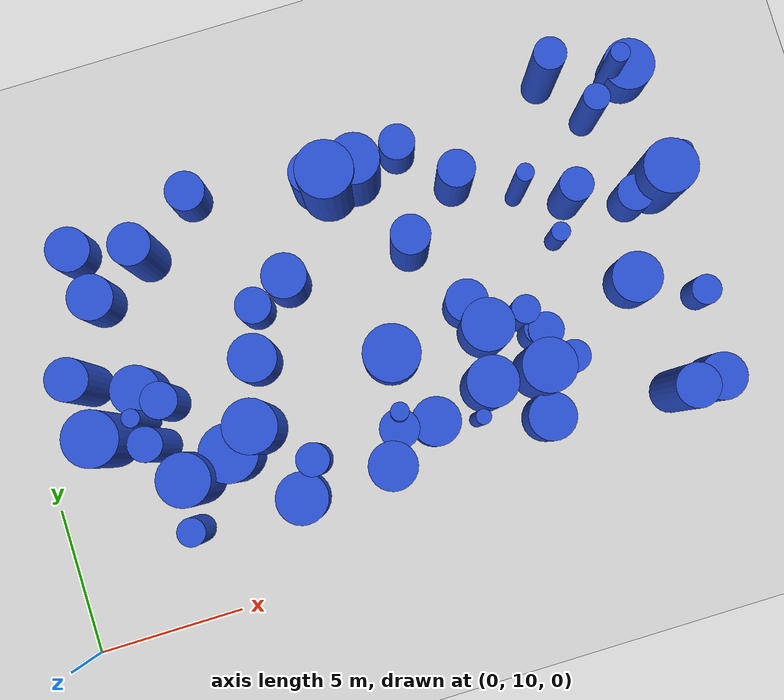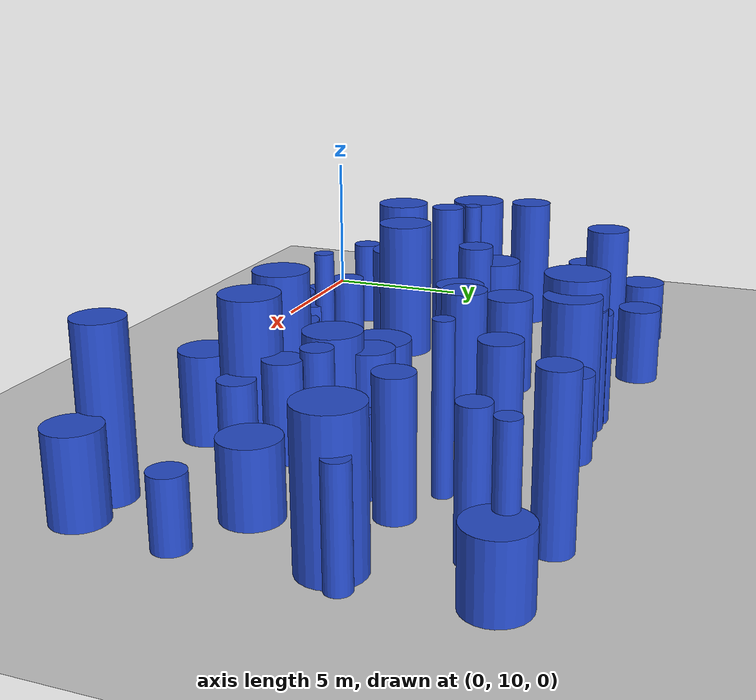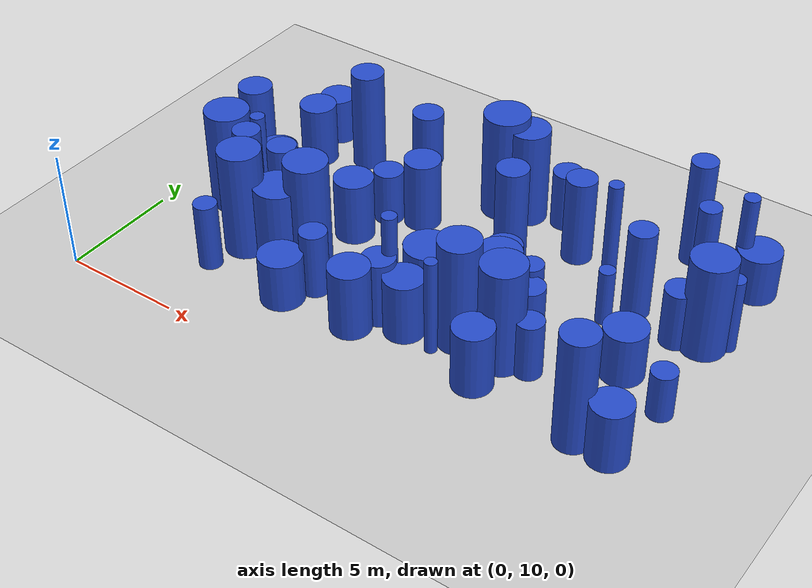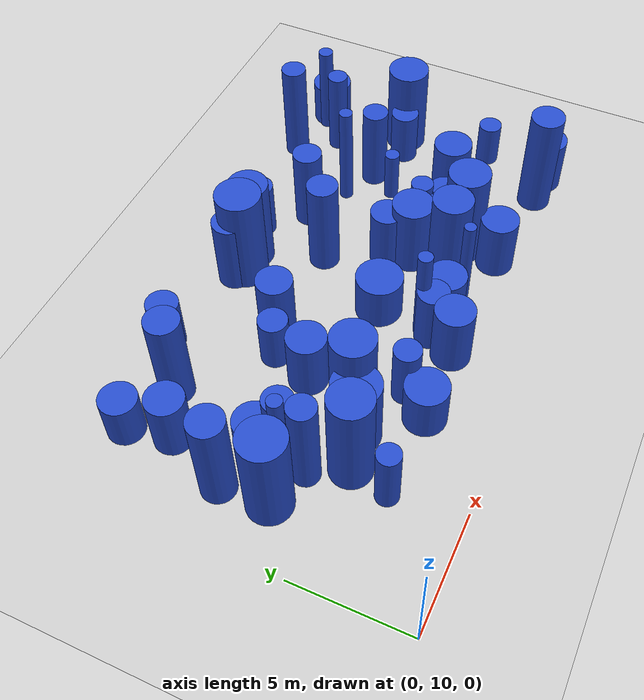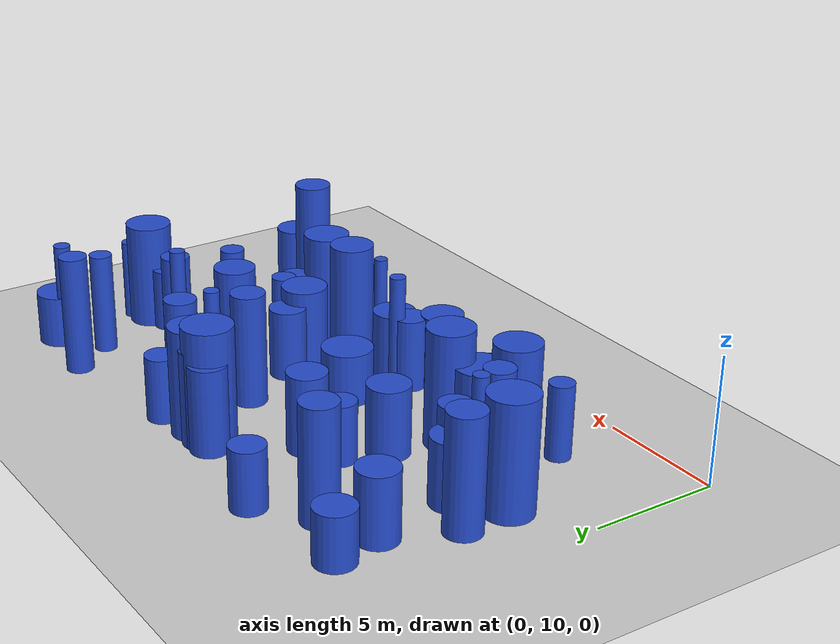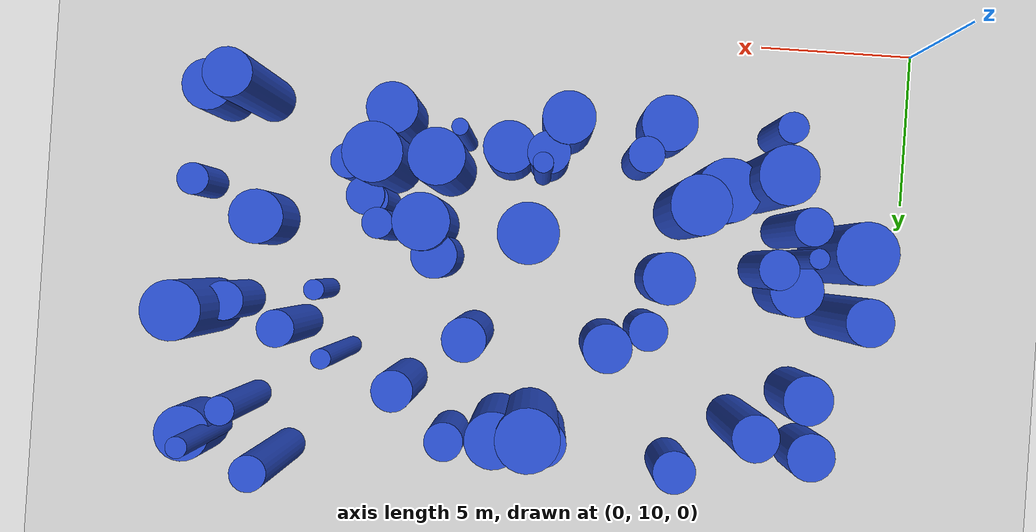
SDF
<sdf version="1.6">
 <world name="default">
  <model name="ground_plane">
   <static>1</static>
   <link name="link">
    <collision name="collision">
     <geometry><plane><normal>0 0 1</normal><size>100 100</size></plane></geometry>
     <surface><friction><ode><mu>100</mu><mu2>50</mu2></ode></friction></surface>
    </collision>
    <visual name="visual">
     <cast_shadows>0</cast_shadows>
     <geometry><plane><normal>0 0 1</normal><size>100 100</size></plane></geometry>
     <material>
      <script><uri>file://media/materials/scripts/gazebo.material</uri><name>Gazebo/Grey</name></script>
     </material>
    </visual>
   </link>
  </model>
  <model name="0">
   <static>0</static>
   <link name="link">
    <inertial>
     <mass>2</mass>
     <inertia><ixx>2.34982</ixx><ixy>0</ixy><ixz>0</ixz><iyy>2.34982</iyy><iyz>0</iyz><izz>0.175341</izz></inertia>
    </inertial>
    <collision name="collision">
     <geometry><cylinder><length>3.68414</length><radius>0.418737</radius></cylinder></geometry>
     <surface><contact><collide_without_contact>1</collide_without_contact></contact></surface>
    </collision>
    <visual name="visual">
     <geometry><cylinder><length>3.68414</length><radius>0.418737</radius></cylinder></geometry>
     <material>
      <script><uri>file://media/materials/scripts/gazebo.material</uri><name>Gazebo/Blue</name></script>
     </material>
    </visual>
    <gravity>0</gravity>
   </link>
   <pose>22.4212 20.0822 1.84207 0 -0 0</pose>
  </model>
  <model name="9">
   <static>0</static>
   <link name="link">
    <inertial>
     <mass>2</mass>
     <inertia><ixx>1.77191</ixx><ixy>0</ixy><ixz>0</ixz><iyy>1.77191</iyy><iyz>0</iyz><izz>0.691914</izz></inertia>
    </inertial>
    <collision name="collision">
     <geometry><cylinder><length>2.92502</length><radius>0.831814</radius></cylinder></geometry>
     <surface><contact><collide_without_contact>1</collide_without_contact></contact></surface>
    </collision>
    <visual name="visual">
     <geometry><cylinder><length>2.92502</length><radius>0.831814</radius></cylinder></geometry>
     <material>
      <script><uri>file://media/materials/scripts/gazebo.material</uri><name>Gazebo/Blue</name></script>
     </material>
    </visual>
    <gravity>0</gravity>
   </link>
   <pose>11.3721 13.2 1.46251 0 -0 0</pose>
  </model>
  <model name="12">
   <static>0</static>
   <link name="link">
    <inertial>
     <mass>2</mass>
     <inertia>
      <ixx>3.57056</ixx>
      <ixy>0</ixy>
      <ixz>0</ixz>
      <iyy>3.57056</iyy>
      <iyz>0</iyz>
      <izz>0.0913782</izz>
     </inertia>
    </inertial>
    <collision name="collision">
     <geometry><cylinder><length>4.59883</length><radius>0.302288</radius></cylinder></geometry>
     <surface><contact><collide_without_contact>1</collide_without_contact></contact></surface>
    </collision>
    <visual name="visual">
     <geometry><cylinder><length>4.59883</length><radius>0.302288</radius></cylinder></geometry>
     <material>
      <script><uri>file://media/materials/scripts/gazebo.material</uri><name>Gazebo/Blue</name></script>
     </material>
    </visual>
    <gravity>0</gravity>
   </link>
   <pose>3.87306 17.0696 2.29941 0 -0 0</pose>
  </model>
  <model name="15">
   <static>0</static>
   <link name="link">
    <inertial>
     <mass>2</mass>
     <inertia><ixx>1.15166</ixx><ixy>0</ixy><ixz>0</ixz><iyy>1.15166</iyy><iyz>0</iyz><izz>0.803615</izz></inertia>
    </inertial>
    <collision name="collision">
     <geometry><cylinder><length>2.12111</length><radius>0.896446</radius></cylinder></geometry>
     <surface><contact><collide_without_contact>1</collide_without_contact></contact></surface>
    </collision>
    <visual name="visual">
     <geometry><cylinder><length>2.12111</length><radius>0.896446</radius></cylinder></geometry>
     <material>
      <script><uri>file://media/materials/scripts/gazebo.material</uri><name>Gazebo/Blue</name></script>
     </material>
    </visual>
    <gravity>0</gravity>
   </link>
   <pose>8.16995 13.0512 1.06056 0 -0 0</pose>
  </model>
  <model name="40">
   <static>0</static>
   <link name="link">
    <inertial>
     <mass>2</mass>
     <inertia><ixx>1.56214</ixx><ixy>0</ixy><ixz>0</ixz><iyy>1.56214</iyy><iyz>0</iyz><izz>0.523114</izz></inertia>
    </inertial>
    <collision name="collision">
     <geometry><cylinder><length>2.79347</length><radius>0.723266</radius></cylinder></geometry>
     <surface><contact><collide_without_contact>1</collide_without_contact></contact></surface>
    </collision>
    <visual name="visual">
     <geometry><cylinder><length>2.79347</length><radius>0.723266</radius></cylinder></geometry>
     <material>
      <script><uri>file://media/materials/scripts/gazebo.material</uri><name>Gazebo/Blue</name></script>
     </material>
    </visual>
    <gravity>0</gravity>
   </link>
   <pose>15.2742 17.7058 1.39674 0 -0 0</pose>
  </model>
  <model name="42">
   <static>0</static>
   <link name="link">
    <inertial>
     <mass>2</mass>
     <inertia><ixx>3.9345</ixx><ixy>0</ixy><ixz>0</ixz><iyy>3.9345</iyy><iyz>0</iyz><izz>0.817818</izz></inertia>
    </inertial>
    <collision name="collision">
     <geometry><cylinder><length>4.5993</length><radius>0.904333</radius></cylinder></geometry>
     <surface><contact><collide_without_contact>1</collide_without_contact></contact></surface>
    </collision>
    <visual name="visual">
     <geometry><cylinder><length>4.5993</length><radius>0.904333</radius></cylinder></geometry>
     <material>
      <script><uri>file://media/materials/scripts/gazebo.material</uri><name>Gazebo/Blue</name></script>
     </material>
    </visual>
    <gravity>0</gravity>
   </link>
   <pose>7.3963 15.7324 2.29965 0 -0 0</pose>
  </model>
  <model name="49">
   <static>0</static>
   <link name="link">
    <inertial>
     <mass>2</mass>
     <inertia><ixx>1.51586</ixx><ixy>0</ixy><ixz>0</ixz><iyy>1.51586</iyy><iyz>0</iyz><izz>0.321451</izz></inertia>
    </inertial>
    <collision name="collision">
     <geometry><cylinder><length>2.85146</length><radius>0.566967</radius></cylinder></geometry>
     <surface><contact><collide_without_contact>1</collide_without_contact></contact></surface>
    </collision>
    <visual name="visual">
     <geometry><cylinder><length>2.85146</length><radius>0.566967</radius></cylinder></geometry>
     <material>
      <script><uri>file://media/materials/scripts/gazebo.material</uri><name>Gazebo/Blue</name></script>
     </material>
    </visual>
    <gravity>0</gravity>
   </link>
   <pose>8.91157 14.1693 1.42573 0 -0 0</pose>
  </model>
  <model name="50">
   <static>0</static>
   <link name="link">
    <inertial>
     <mass>2</mass>
     <inertia><ixx>1.61339</ixx><ixy>0</ixy><ixz>0</ixz><iyy>1.61339</iyy><iyz>0</iyz><izz>0.452002</izz></inertia>
    </inertial>
    <collision name="collision">
     <geometry><cylinder><length>2.8852</length><radius>0.672311</radius></cylinder></geometry>
     <surface><contact><collide_without_contact>1</collide_without_contact></contact></surface>
    </collision>
    <visual name="visual">
     <geometry><cylinder><length>2.8852</length><radius>0.672311</radius></cylinder></geometry>
     <material>
      <script><uri>file://media/materials/scripts/gazebo.material</uri><name>Gazebo/Blue</name></script>
     </material>
    </visual>
    <gravity>0</gravity>
   </link>
   <pose>11.9244 14.3079 1.4426 0 -0 0</pose>
  </model>
  <model name="55">
   <static>0</static>
   <link name="link">
    <inertial>
     <mass>2</mass>
     <inertia><ixx>4.19628</ixx><ixy>0</ixy><ixz>0</ixz><iyy>4.19628</iyy><iyz>0</iyz><izz>0.712394</izz></inertia>
    </inertial>
    <collision name="collision">
     <geometry><cylinder><length>4.80005</length><radius>0.844034</radius></cylinder></geometry>
     <surface><contact><collide_without_contact>1</collide_without_contact></contact></surface>
    </collision>
    <visual name="visual">
     <geometry><cylinder><length>4.80005</length><radius>0.844034</radius></cylinder></geometry>
     <material>
      <script><uri>file://media/materials/scripts/gazebo.material</uri><name>Gazebo/Blue</name></script>
     </material>
    </visual>
    <gravity>0</gravity>
   </link>
   <pose>15.1603 14.8496 2.40003 0 -0 0</pose>
  </model>
  <model name="65">
   <static>0</static>
   <link name="link">
    <inertial>
     <mass>2</mass>
     <inertia><ixx>1.82034</ixx><ixy>0</ixy><ixz>0</ixz><iyy>1.82034</iyy><iyz>0</iyz><izz>0.128433</izz></inertia>
    </inertial>
    <collision name="collision">
     <geometry><cylinder><length>3.24603</length><radius>0.358375</radius></cylinder></geometry>
     <surface><contact><collide_without_contact>1</collide_without_contact></contact></surface>
    </collision>
    <visual name="visual">
     <geometry><cylinder><length>3.24603</length><radius>0.358375</radius></cylinder></geometry>
     <material>
      <script><uri>file://media/materials/scripts/gazebo.material</uri><name>Gazebo/Blue</name></script>
     </material>
    </visual>
    <gravity>0</gravity>
   </link>
   <pose>23.5079 20.3422 1.62302 0 -0 0</pose>
  </model>
  <model name="69">
   <static>0</static>
   <link name="link">
    <inertial>
     <mass>2</mass>
     <inertia><ixx>3.87499</ixx><ixy>0</ixy><ixz>0</ixz><iyy>3.87499</iyy><iyz>0</iyz><izz>0.295667</izz></inertia>
    </inertial>
    <collision name="collision">
     <geometry><cylinder><length>4.72895</length><radius>0.543753</radius></cylinder></geometry>
     <surface><contact><collide_without_contact>1</collide_without_contact></contact></surface>
    </collision>
    <visual name="visual">
     <geometry><cylinder><length>4.72895</length><radius>0.543753</radius></cylinder></geometry>
     <material>
      <script><uri>file://media/materials/scripts/gazebo.material</uri><name>Gazebo/Blue</name></script>
     </material>
    </visual>
    <gravity>0</gravity>
   </link>
   <pose>20.0239 24.3758 2.36447 0 -0 0</pose>
  </model>
  <model name="78">
   <static>0</static>
   <link name="link">
    <inertial>
     <mass>2</mass>
     <inertia><ixx>1.49884</ixx><ixy>0</ixy><ixz>0</ixz><iyy>1.49884</iyy><iyz>0</iyz><izz>0.718499</izz></inertia>
    </inertial>
    <collision name="collision">
     <geometry><cylinder><length>2.61487</length><radius>0.847643</radius></cylinder></geometry>
     <surface><contact><collide_without_contact>1</collide_without_contact></contact></surface>
    </collision>
    <visual name="visual">
     <geometry><cylinder><length>2.61487</length><radius>0.847643</radius></cylinder></geometry>
     <material>
      <script><uri>file://media/materials/scripts/gazebo.material</uri><name>Gazebo/Blue</name></script>
     </material>
    </visual>
    <gravity>0</gravity>
   </link>
   <pose>3.94613 18.0538 1.30744 0 -0 0</pose>
  </model>
  <model name="93">
   <static>0</static>
   <link name="link">
    <inertial>
     <mass>2</mass>
     <inertia><ixx>3.51306</ixx><ixy>0</ixy><ixz>0</ixz><iyy>3.51306</iyy><iyz>0</iyz><izz>0.438819</izz></inertia>
    </inertial>
    <collision name="collision">
     <geometry><cylinder><length>4.44544</length><radius>0.662434</radius></cylinder></geometry>
     <surface><contact><collide_without_contact>1</collide_without_contact></contact></surface>
    </collision>
    <visual name="visual">
     <geometry><cylinder><length>4.44544</length><radius>0.662434</radius></cylinder></geometry>
     <material>
      <script><uri>file://media/materials/scripts/gazebo.material</uri><name>Gazebo/Blue</name></script>
     </material>
    </visual>
    <gravity>0</gravity>
   </link>
   <pose>14.0495 20.1173 2.22272 0 -0 0</pose>
  </model>
  <model name="95">
   <static>0</static>
   <link name="link">
    <inertial>
     <mass>2</mass>
     <inertia><ixx>2.62375</ixx><ixy>0</ixy><ixz>0</ixz><iyy>2.62375</iyy><iyz>0</iyz><izz>0.398352</izz></inertia>
    </inertial>
    <collision name="collision">
     <geometry><cylinder><length>3.81411</length><radius>0.631151</radius></cylinder></geometry>
     <surface><contact><collide_without_contact>1</collide_without_contact></contact></surface>
    </collision>
    <visual name="visual">
     <geometry><cylinder><length>3.81411</length><radius>0.631151</radius></cylinder></geometry>
     <material>
      <script><uri>file://media/materials/scripts/gazebo.material</uri><name>Gazebo/Blue</name></script>
     </material>
    </visual>
    <gravity>0</gravity>
   </link>
   <pose>16.1446 21.8435 1.90705 0 -0 0</pose>
  </model>
  <model name="98">
   <static>0</static>
   <link name="link">
    <inertial>
     <mass>2</mass>
     <inertia><ixx>1.56863</ixx><ixy>0</ixy><ixz>0</ixz><iyy>1.56863</iyy><iyz>0</iyz><izz>0.659448</izz></inertia>
    </inertial>
    <collision name="collision">
     <geometry><cylinder><length>2.72643</length><radius>0.812064</radius></cylinder></geometry>
     <surface><contact><collide_without_contact>1</collide_without_contact></contact></surface>
    </collision>
    <visual name="visual">
     <geometry><cylinder><length>2.72643</length><radius>0.812064</radius></cylinder></geometry>
     <material>
      <script><uri>file://media/materials/scripts/gazebo.material</uri><name>Gazebo/Blue</name></script>
     </material>
    </visual>
    <gravity>0</gravity>
   </link>
   <pose>16.8643 13.2333 1.36321 0 -0 0</pose>
  </model>
  <model name="105">
   <static>0</static>
   <link name="link">
    <inertial>
     <mass>2</mass>
     <inertia><ixx>3.61232</ixx><ixy>0</ixy><ixz>0</ixz><iyy>3.61232</iyy><iyz>0</iyz><izz>0.498938</izz></inertia>
    </inertial>
    <collision name="collision">
     <geometry><cylinder><length>4.49189</length><radius>0.706356</radius></cylinder></geometry>
     <surface><contact><collide_without_contact>1</collide_without_contact></contact></surface>
    </collision>
    <visual name="visual">
     <geometry><cylinder><length>4.49189</length><radius>0.706356</radius></cylinder></geometry>
     <material>
      <script><uri>file://media/materials/scripts/gazebo.material</uri><name>Gazebo/Blue</name></script>
     </material>
    </visual>
    <gravity>0</gravity>
   </link>
   <pose>5.34761 22.4274 2.24595 0 -0 0</pose>
  </model>
  <model name="106">
   <static>0</static>
   <link name="link">
    <inertial>
     <mass>2</mass>
     <inertia><ixx>1.86812</ixx><ixy>0</ixy><ixz>0</ixz><iyy>1.86812</iyy><iyz>0</iyz><izz>0.587072</izz></inertia>
    </inertial>
    <collision name="collision">
     <geometry><cylinder><length>3.07368</length><radius>0.766206</radius></cylinder></geometry>
     <surface><contact><collide_without_contact>1</collide_without_contact></contact></surface>
    </collision>
    <visual name="visual">
     <geometry><cylinder><length>3.07368</length><radius>0.766206</radius></cylinder></geometry>
     <material>
      <script><uri>file://media/materials/scripts/gazebo.material</uri><name>Gazebo/Blue</name></script>
     </material>
    </visual>
    <gravity>0</gravity>
   </link>
   <pose>9.74168 20.2119 1.53684 0 -0 0</pose>
  </model>
  <model name="145">
   <static>0</static>
   <link name="link">
    <inertial>
     <mass>2</mass>
     <inertia><ixx>3.38474</ixx><ixy>0</ixy><ixz>0</ixz><iyy>3.38474</iyy><iyz>0</iyz><izz>0.826733</izz></inertia>
    </inertial>
    <collision name="collision">
     <geometry><cylinder><length>4.22235</length><radius>0.909248</radius></cylinder></geometry>
     <surface><contact><collide_without_contact>1</collide_without_contact></contact></surface>
    </collision>
    <visual name="visual">
     <geometry><cylinder><length>4.22235</length><radius>0.909248</radius></cylinder></geometry>
     <material>
      <script><uri>file://media/materials/scripts/gazebo.material</uri><name>Gazebo/Blue</name></script>
     </material>
    </visual>
    <gravity>0</gravity>
   </link>
   <pose>22.763 19.844 2.11117 0 -0 0</pose>
  </model>
  <model name="147">
   <static>0</static>
   <link name="link">
    <inertial>
     <mass>2</mass>
     <inertia><ixx>2.23956</ixx><ixy>0</ixy><ixz>0</ixz><iyy>2.23956</iyy><iyz>0</iyz><izz>0.798507</izz></inertia>
    </inertial>
    <collision name="collision">
     <geometry><cylinder><length>3.32292</length><radius>0.893592</radius></cylinder></geometry>
     <surface><contact><collide_without_contact>1</collide_without_contact></contact></surface>
    </collision>
    <visual name="visual">
     <geometry><cylinder><length>3.32292</length><radius>0.893592</radius></cylinder></geometry>
     <material>
      <script><uri>file://media/materials/scripts/gazebo.material</uri><name>Gazebo/Blue</name></script>
     </material>
    </visual>
    <gravity>0</gravity>
   </link>
   <pose>15.6747 16.7073 1.66146 0 -0 0</pose>
  </model>
  <model name="156">
   <static>0</static>
   <link name="link">
    <inertial>
     <mass>2</mass>
     <inertia><ixx>1.19211</ixx><ixy>0</ixy><ixz>0</ixz><iyy>1.19211</iyy><iyz>0</iyz><izz>0.749006</izz></inertia>
    </inertial>
    <collision name="collision">
     <geometry><cylinder><length>2.21487</length><radius>0.865451</radius></cylinder></geometry>
     <surface><contact><collide_without_contact>1</collide_without_contact></contact></surface>
    </collision>
    <visual name="visual">
     <geometry><cylinder><length>2.21487</length><radius>0.865451</radius></cylinder></geometry>
     <material>
      <script><uri>file://media/materials/scripts/gazebo.material</uri><name>Gazebo/Blue</name></script>
     </material>
    </visual>
    <gravity>0</gravity>
   </link>
   <pose>21.0144 16.8537 1.10743 0 -0 0</pose>
  </model>
  <model name="167">
   <static>0</static>
   <link name="link">
    <inertial>
     <mass>2</mass>
     <inertia>
      <ixx>3.98124</ixx>
      <ixy>0</ixy>
      <ixz>0</ixz>
      <iyy>3.98124</iyy>
      <iyz>0</iyz>
      <izz>0.0870769</izz>
     </inertia>
    </inertial>
    <collision name="collision">
     <geometry><cylinder><length>4.86068</length><radius>0.295088</radius></cylinder></geometry>
     <surface><contact><collide_without_contact>1</collide_without_contact></contact></surface>
    </collision>
    <visual name="visual">
     <geometry><cylinder><length>4.86068</length><radius>0.295088</radius></cylinder></geometry>
     <material>
      <script><uri>file://media/materials/scripts/gazebo.material</uri><name>Gazebo/Blue</name></script>
     </material>
    </visual>
    <gravity>0</gravity>
   </link>
   <pose>18.097 20.9042 2.43034 0 -0 0</pose>
  </model>
  <model name="172">
   <static>0</static>
   <link name="link">
    <inertial>
     <mass>2</mass>
     <inertia><ixx>3.68279</ixx><ixy>0</ixy><ixz>0</ixz><iyy>3.68279</iyy><iyz>0</iyz><izz>0.512461</izz></inertia>
    </inertial>
    <collision name="collision">
     <geometry><cylinder><length>4.53424</length><radius>0.715864</radius></cylinder></geometry>
     <surface><contact><collide_without_contact>1</collide_without_contact></contact></surface>
    </collision>
    <visual name="visual">
     <geometry><cylinder><length>4.53424</length><radius>0.715864</radius></cylinder></geometry>
     <material>
      <script><uri>file://media/materials/scripts/gazebo.material</uri><name>Gazebo/Blue</name></script>
     </material>
    </visual>
    <gravity>0</gravity>
   </link>
   <pose>2.25294 18.8386 2.26712 0 -0 0</pose>
  </model>
  <model name="197">
   <static>0</static>
   <link name="link">
    <inertial>
     <mass>2</mass>
     <inertia>
      <ixx>2.94893</ixx>
      <ixy>0</ixy>
      <ixz>0</ixz>
      <iyy>2.94893</iyy>
      <iyz>0</iyz>
      <izz>0.0649626</izz>
     </inertia>
    </inertial>
    <collision name="collision">
     <geometry><cylinder><length>4.18315</length><radius>0.254878</radius></cylinder></geometry>
     <surface><contact><collide_without_contact>1</collide_without_contact></contact></surface>
    </collision>
    <visual name="visual">
     <geometry><cylinder><length>4.18315</length><radius>0.254878</radius></cylinder></geometry>
     <material>
      <script><uri>file://media/materials/scripts/gazebo.material</uri><name>Gazebo/Blue</name></script>
     </material>
    </visual>
    <gravity>0</gravity>
   </link>
   <pose>14.5908 13.8722 2.09157 0 -0 0</pose>
  </model>
  <model name="206">
   <static>0</static>
   <link name="link">
    <inertial>
     <mass>2</mass>
     <inertia><ixx>1.4202</ixx><ixy>0</ixy><ixz>0</ixz><iyy>1.4202</iyy><iyz>0</iyz><izz>0.643957</izz></inertia>
    </inertial>
    <collision name="collision">
     <geometry><cylinder><length>2.56697</length><radius>0.802469</radius></cylinder></geometry>
     <surface><contact><collide_without_contact>1</collide_without_contact></contact></surface>
    </collision>
    <visual name="visual">
     <geometry><cylinder><length>2.56697</length><radius>0.802469</radius></cylinder></geometry>
     <material>
      <script><uri>file://media/materials/scripts/gazebo.material</uri><name>Gazebo/Blue</name></script>
     </material>
    </visual>
    <gravity>0</gravity>
   </link>
   <pose>22.6809 12.8611 1.28349 0 -0 0</pose>
  </model>
  <model name="214">
   <static>0</static>
   <link name="link">
    <inertial>
     <mass>2</mass>
     <inertia><ixx>4.10272</ixx><ixy>0</ixy><ixz>0</ixz><iyy>4.10272</iyy><iyz>0</iyz><izz>0.934461</izz></inertia>
    </inertial>
    <collision name="collision">
     <geometry><cylinder><length>4.67043</length><radius>0.966675</radius></cylinder></geometry>
     <surface><contact><collide_without_contact>1</collide_without_contact></contact></surface>
    </collision>
    <visual name="visual">
     <geometry><cylinder><length>4.67043</length><radius>0.966675</radius></cylinder></geometry>
     <material>
      <script><uri>file://media/materials/scripts/gazebo.material</uri><name>Gazebo/Blue</name></script>
     </material>
    </visual>
    <gravity>0</gravity>
   </link>
   <pose>11.9987 22.9 2.33522 0 -0 0</pose>
  </model>
  <model name="239">
   <static>0</static>
   <link name="link">
    <inertial>
     <mass>2</mass>
     <inertia><ixx>3.57144</ixx><ixy>0</ixy><ixz>0</ixz><iyy>3.57144</iyy><iyz>0</iyz><izz>0.331608</izz></inertia>
    </inertial>
    <collision name="collision">
     <geometry><cylinder><length>4.52038</length><radius>0.575854</radius></cylinder></geometry>
     <surface><contact><collide_without_contact>1</collide_without_contact></contact></surface>
    </collision>
    <visual name="visual">
     <geometry><cylinder><length>4.52038</length><radius>0.575854</radius></cylinder></geometry>
     <material>
      <script><uri>file://media/materials/scripts/gazebo.material</uri><name>Gazebo/Blue</name></script>
     </material>
    </visual>
    <gravity>0</gravity>
   </link>
   <pose>4.06341 16.1518 2.26019 0 -0 0</pose>
  </model>
  <model name="279">
   <static>0</static>
   <link name="link">
    <inertial>
     <mass>2</mass>
     <inertia>
      <ixx>0.821033</ixx>
      <ixy>0</ixy>
      <ixz>0</ixz>
      <iyy>0.821033</iyy>
      <iyz>0</iyz>
      <izz>0.260444</izz>
     </inertia>
    </inertial>
    <collision name="collision">
     <geometry><cylinder><length>2.03589</length><radius>0.510337</radius></cylinder></geometry>
     <surface><contact><collide_without_contact>1</collide_without_contact></contact></surface>
    </collision>
    <visual name="visual">
     <geometry><cylinder><length>2.03589</length><radius>0.510337</radius></cylinder></geometry>
     <material>
      <script><uri>file://media/materials/scripts/gazebo.material</uri><name>Gazebo/Blue</name></script>
     </material>
    </visual>
    <gravity>0</gravity>
   </link>
   <pose>23.1385 15.789 1.01795 0 -0 0</pose>
  </model>
  <model name="282">
   <static>0</static>
   <link name="link">
    <inertial>
     <mass>2</mass>
     <inertia><ixx>1.53958</ixx><ixy>0</ixy><ixz>0</ixz><iyy>1.53958</iyy><iyz>0</iyz><izz>0.616621</izz></inertia>
    </inertial>
    <collision name="collision">
     <geometry><cylinder><length>2.71802</length><radius>0.785252</radius></cylinder></geometry>
     <surface><contact><collide_without_contact>1</collide_without_contact></contact></surface>
    </collision>
    <visual name="visual">
     <geometry><cylinder><length>2.71802</length><radius>0.785252</radius></cylinder></geometry>
     <material>
      <script><uri>file://media/materials/scripts/gazebo.material</uri><name>Gazebo/Blue</name></script>
     </material>
    </visual>
    <gravity>0</gravity>
   </link>
   <pose>3.39095 21.4374 1.35901 0 -0 0</pose>
  </model>
  <model name="291">
   <static>0</static>
   <link name="link">
    <inertial>
     <mass>2</mass>
     <inertia><ixx>1.28958</ixx><ixy>0</ixy><ixz>0</ixz><iyy>1.28958</iyy><iyz>0</iyz><izz>0.37673</izz></inertia>
    </inertial>
    <collision name="collision">
     <geometry><cylinder><length>2.57046</length><radius>0.613783</radius></cylinder></geometry>
     <surface><contact><collide_without_contact>1</collide_without_contact></contact></surface>
    </collision>
    <visual name="visual">
     <geometry><cylinder><length>2.57046</length><radius>0.613783</radius></cylinder></geometry>
     <material>
      <script><uri>file://media/materials/scripts/gazebo.material</uri><name>Gazebo/Blue</name></script>
     </material>
    </visual>
    <gravity>0</gravity>
   </link>
   <pose>14.6183 23.4885 1.28523 0 -0 0</pose>
  </model>
  <model name="296">
   <static>0</static>
   <link name="link">
    <inertial>
     <mass>2</mass>
     <inertia><ixx>1.11084</ixx><ixy>0</ixy><ixz>0</ixz><iyy>1.11084</iyy><iyz>0</iyz><izz>0.784169</izz></inertia>
    </inertial>
    <collision name="collision">
     <geometry><cylinder><length>2.07667</length><radius>0.885533</radius></cylinder></geometry>
     <surface><contact><collide_without_contact>1</collide_without_contact></contact></surface>
    </collision>
    <visual name="visual">
     <geometry><cylinder><length>2.07667</length><radius>0.885533</radius></cylinder></geometry>
     <material>
      <script><uri>file://media/materials/scripts/gazebo.material</uri><name>Gazebo/Blue</name></script>
     </material>
    </visual>
    <gravity>0</gravity>
   </link>
   <pose>22.9486 23.8587 1.03833 0 -0 0</pose>
  </model>
  <model name="301">
   <static>0</static>
   <link name="link">
    <inertial>
     <mass>2</mass>
     <inertia><ixx>2.20664</ixx><ixy>0</ixy><ixz>0</ixz><iyy>2.20664</iyy><iyz>0</iyz><izz>0.545153</izz></inertia>
    </inertial>
    <collision name="collision">
     <geometry><cylinder><length>3.40652</length><radius>0.738345</radius></cylinder></geometry>
     <surface><contact><collide_without_contact>1</collide_without_contact></contact></surface>
    </collision>
    <visual name="visual">
     <geometry><cylinder><length>3.40652</length><radius>0.738345</radius></cylinder></geometry>
     <material>
      <script><uri>file://media/materials/scripts/gazebo.material</uri><name>Gazebo/Blue</name></script>
     </material>
    </visual>
    <gravity>0</gravity>
   </link>
   <pose>11.5515 23.1869 1.70326 0 -0 0</pose>
  </model>
  <model name="303">
   <static>0</static>
   <link name="link">
    <inertial>
     <mass>2</mass>
     <inertia><ixx>1.10804</ixx><ixy>0</ixy><ixz>0</ixz><iyy>1.10804</iyy><iyz>0</iyz><izz>0.384993</izz></inertia>
    </inertial>
    <collision name="collision">
     <geometry><cylinder><length>2.34377</length><radius>0.620478</radius></cylinder></geometry>
     <surface><contact><collide_without_contact>1</collide_without_contact></contact></surface>
    </collision>
    <visual name="visual">
     <geometry><cylinder><length>2.34377</length><radius>0.620478</radius></cylinder></geometry>
     <material>
      <script><uri>file://media/materials/scripts/gazebo.material</uri><name>Gazebo/Blue</name></script>
     </material>
    </visual>
    <gravity>0</gravity>
   </link>
   <pose>8.44668 19.6552 1.17188 0 -0 0</pose>
  </model>
  <model name="312">
   <static>0</static>
   <link name="link">
    <inertial>
     <mass>2</mass>
     <inertia><ixx>1.56041</ixx><ixy>0</ixy><ixz>0</ixz><iyy>1.56041</iyy><iyz>0</iyz><izz>0.232536</izz></inertia>
    </inertial>
    <collision name="collision">
     <geometry><cylinder><length>2.94361</length><radius>0.48222</radius></cylinder></geometry>
     <surface><contact><collide_without_contact>1</collide_without_contact></contact></surface>
    </collision>
    <visual name="visual">
     <geometry><cylinder><length>2.94361</length><radius>0.48222</radius></cylinder></geometry>
     <material>
      <script><uri>file://media/materials/scripts/gazebo.material</uri><name>Gazebo/Blue</name></script>
     </material>
    </visual>
    <gravity>0</gravity>
   </link>
   <pose>4.46694 13.0554 1.47181 0 -0 0</pose>
  </model>
  <model name="316">
   <static>0</static>
   <link name="link">
    <inertial>
     <mass>2</mass>
     <inertia><ixx>2.39269</ixx><ixy>0</ixy><ixz>0</ixz><iyy>2.39269</iyy><iyz>0</iyz><izz>0.978938</izz></inertia>
    </inertial>
    <collision name="collision">
     <geometry><cylinder><length>3.37925</length><radius>0.989413</radius></cylinder></geometry>
     <surface><contact><collide_without_contact>1</collide_without_contact></contact></surface>
    </collision>
    <visual name="visual">
     <geometry><cylinder><length>3.37925</length><radius>0.989413</radius></cylinder></geometry>
     <material>
      <script><uri>file://media/materials/scripts/gazebo.material</uri><name>Gazebo/Blue</name></script>
     </material>
    </visual>
    <gravity>0</gravity>
   </link>
   <pose>6.38619 15.1518 1.68962 0 -0 0</pose>
  </model>
  <model name="324">
   <static>0</static>
   <link name="link">
    <inertial>
     <mass>2</mass>
     <inertia><ixx>1.20902</ixx><ixy>0</ixy><ixz>0</ixz><iyy>1.20902</iyy><iyz>0</iyz><izz>0.993328</izz></inertia>
    </inertial>
    <collision name="collision">
     <geometry><cylinder><length>2.0674</length><radius>0.996658</radius></cylinder></geometry>
     <surface><contact><collide_without_contact>1</collide_without_contact></contact></surface>
    </collision>
    <visual name="visual">
     <geometry><cylinder><length>2.0674</length><radius>0.996658</radius></cylinder></geometry>
     <material>
      <script><uri>file://media/materials/scripts/gazebo.material</uri><name>Gazebo/Blue</name></script>
     </material>
    </visual>
    <gravity>0</gravity>
   </link>
   <pose>12.4123 16.8154 1.0337 0 -0 0</pose>
  </model>
  <model name="329">
   <static>0</static>
   <link name="link">
    <inertial>
     <mass>2</mass>
     <inertia><ixx>1.24222</ixx><ixy>0</ixy><ixz>0</ixz><iyy>1.24222</iyy><iyz>0</iyz><izz>0.385061</izz></inertia>
    </inertial>
    <collision name="collision">
     <geometry><cylinder><length>2.50961</length><radius>0.620533</radius></cylinder></geometry>
     <surface><contact><collide_without_contact>1</collide_without_contact></contact></surface>
    </collision>
    <visual name="visual">
     <geometry><cylinder><length>2.50961</length><radius>0.620533</radius></cylinder></geometry>
     <material>
      <script><uri>file://media/materials/scripts/gazebo.material</uri><name>Gazebo/Blue</name></script>
     </material>
    </visual>
    <gravity>0</gravity>
   </link>
   <pose>21.7572 19.5504 1.25481 0 -0 0</pose>
  </model>
  <model name="332">
   <static>0</static>
   <link name="link">
    <inertial>
     <mass>2</mass>
     <inertia><ixx>3.08615</ixx><ixy>0</ixy><ixz>0</ixz><iyy>3.08615</iyy><iyz>0</iyz><izz>0.106365</izz></inertia>
    </inertial>
    <collision name="collision">
     <geometry><cylinder><length>4.26589</length><radius>0.326137</radius></cylinder></geometry>
     <surface><contact><collide_without_contact>1</collide_without_contact></contact></surface>
    </collision>
    <visual name="visual">
     <geometry><cylinder><length>4.26589</length><radius>0.326137</radius></cylinder></geometry>
     <material>
      <script><uri>file://media/materials/scripts/gazebo.material</uri><name>Gazebo/Blue</name></script>
     </material>
    </visual>
    <gravity>0</gravity>
   </link>
   <pose>22.2987 23.8525 2.13294 0 -0 0</pose>
  </model>
  <model name="338">
   <static>0</static>
   <link name="link">
    <inertial>
     <mass>2</mass>
     <inertia><ixx>1.03598</ixx><ixy>0</ixy><ixz>0</ixz><iyy>1.03598</iyy><iyz>0</iyz><izz>0.105021</izz></inertia>
    </inertial>
    <collision name="collision">
     <geometry><cylinder><length>2.42916</length><radius>0.32407</radius></cylinder></geometry>
     <surface><contact><collide_without_contact>1</collide_without_contact></contact></surface>
    </collision>
    <visual name="visual">
     <geometry><cylinder><length>2.42916</length><radius>0.32407</radius></cylinder></geometry>
     <material>
      <script><uri>file://media/materials/scripts/gazebo.material</uri><name>Gazebo/Blue</name></script>
     </material>
    </visual>
    <gravity>0</gravity>
   </link>
   <pose>18.987 19.0302 1.21458 0 -0 0</pose>
  </model>
  <model name="348">
   <static>0</static>
   <link name="link">
    <inertial>
     <mass>2</mass>
     <inertia><ixx>3.94161</ixx><ixy>0</ixy><ixz>0</ixz><iyy>3.94161</iyy><iyz>0</iyz><izz>0.802784</izz></inertia>
    </inertial>
    <collision name="collision">
     <geometry><cylinder><length>4.60883</length><radius>0.895982</radius></cylinder></geometry>
     <surface><contact><collide_without_contact>1</collide_without_contact></contact></surface>
    </collision>
    <visual name="visual">
     <geometry><cylinder><length>4.60883</length><radius>0.895982</radius></cylinder></geometry>
     <material>
      <script><uri>file://media/materials/scripts/gazebo.material</uri><name>Gazebo/Blue</name></script>
     </material>
    </visual>
    <gravity>0</gravity>
   </link>
   <pose>17.0551 14.8237 2.30441 0 -0 0</pose>
  </model>
  <model name="349">
   <static>0</static>
   <link name="link">
    <inertial>
     <mass>2</mass>
     <inertia><ixx>4.13949</ixx><ixy>0</ixy><ixz>0</ixz><iyy>4.13949</iyy><iyz>0</iyz><izz>0.785208</izz></inertia>
    </inertial>
    <collision name="collision">
     <geometry><cylinder><length>4.74145</length><radius>0.88612</radius></cylinder></geometry>
     <surface><contact><collide_without_contact>1</collide_without_contact></contact></surface>
    </collision>
    <visual name="visual">
     <geometry><cylinder><length>4.74145</length><radius>0.88612</radius></cylinder></geometry>
     <material>
      <script><uri>file://media/materials/scripts/gazebo.material</uri><name>Gazebo/Blue</name></script>
     </material>
    </visual>
    <gravity>0</gravity>
   </link>
   <pose>4.93355 14.712 2.37072 0 -0 0</pose>
  </model>
  <model name="374">
   <static>0</static>
   <link name="link">
    <inertial>
     <mass>2</mass>
     <inertia><ixx>2.00949</ixx><ixy>0</ixy><ixz>0</ixz><iyy>2.00949</iyy><iyz>0</iyz><izz>0.389696</izz></inertia>
    </inertial>
    <collision name="collision">
     <geometry><cylinder><length>3.29968</length><radius>0.624256</radius></cylinder></geometry>
     <surface><contact><collide_without_contact>1</collide_without_contact></contact></surface>
    </collision>
    <visual name="visual">
     <geometry><cylinder><length>3.29968</length><radius>0.624256</radius></cylinder></geometry>
     <material>
      <script><uri>file://media/materials/scripts/gazebo.material</uri><name>Gazebo/Blue</name></script>
     </material>
    </visual>
    <gravity>0</gravity>
   </link>
   <pose>4.69948 17.4582 1.64984 0 -0 0</pose>
  </model>
  <model name="381">
   <static>0</static>
   <link name="link">
    <inertial>
     <mass>2</mass>
     <inertia><ixx>4.36412</ixx><ixy>0</ixy><ixz>0</ixz><iyy>4.36412</iyy><iyz>0</iyz><izz>0.53238</izz></inertia>
    </inertial>
    <collision name="collision">
     <geometry><cylinder><length>4.95858</length><radius>0.729644</radius></cylinder></geometry>
     <surface><contact><collide_without_contact>1</collide_without_contact></contact></surface>
    </collision>
    <visual name="visual">
     <geometry><cylinder><length>4.95858</length><radius>0.729644</radius></cylinder></geometry>
     <material>
      <script><uri>file://media/materials/scripts/gazebo.material</uri><name>Gazebo/Blue</name></script>
     </material>
    </visual>
    <gravity>0</gravity>
   </link>
   <pose>21.2933 12.8514 2.47929 0 -0 0</pose>
  </model>
  <model name="382">
   <static>0</static>
   <link name="link">
    <inertial>
     <mass>2</mass>
     <inertia><ixx>1.20302</ixx><ixy>0</ixy><ixz>0</ixz><iyy>1.20302</iyy><iyz>0</iyz><izz>0.460988</izz></inertia>
    </inertial>
    <collision name="collision">
     <geometry><cylinder><length>2.4156</length><radius>0.678961</radius></cylinder></geometry>
     <surface><contact><collide_without_contact>1</collide_without_contact></contact></surface>
    </collision>
    <visual name="visual">
     <geometry><cylinder><length>2.4156</length><radius>0.678961</radius></cylinder></geometry>
     <material>
      <script><uri>file://media/materials/scripts/gazebo.material</uri><name>Gazebo/Blue</name></script>
     </material>
    </visual>
    <gravity>0</gravity>
   </link>
   <pose>7.35432 23.9928 1.2078 0 -0 0</pose>
  </model>
  <model name="385">
   <static>0</static>
   <link name="link">
    <inertial>
     <mass>2</mass>
     <inertia><ixx>1.48205</ixx><ixy>0</ixy><ixz>0</ixz><iyy>1.48205</iyy><iyz>0</iyz><izz>0.686506</izz></inertia>
    </inertial>
    <collision name="collision">
     <geometry><cylinder><length>2.61396</length><radius>0.828557</radius></cylinder></geometry>
     <surface><contact><collide_without_contact>1</collide_without_contact></contact></surface>
    </collision>
    <visual name="visual">
     <geometry><cylinder><length>2.61396</length><radius>0.828557</radius></cylinder></geometry>
     <material>
      <script><uri>file://media/materials/scripts/gazebo.material</uri><name>Gazebo/Blue</name></script>
     </material>
    </visual>
    <gravity>0</gravity>
   </link>
   <pose>13.1599 14.1897 1.30698 0 -0 0</pose>
  </model>
  <model name="390">
   <static>0</static>
   <link name="link">
    <inertial>
     <mass>2</mass>
     <inertia><ixx>2.79871</ixx><ixy>0</ixy><ixz>0</ixz><iyy>2.79871</iyy><iyz>0</iyz><izz>0.198458</izz></inertia>
    </inertial>
    <collision name="collision">
     <geometry><cylinder><length>4.02454</length><radius>0.445486</radius></cylinder></geometry>
     <surface><contact><collide_without_contact>1</collide_without_contact></contact></surface>
    </collision>
    <visual name="visual">
     <geometry><cylinder><length>4.02454</length><radius>0.445486</radius></cylinder></geometry>
     <material>
      <script><uri>file://media/materials/scripts/gazebo.material</uri><name>Gazebo/Blue</name></script>
     </material>
    </visual>
    <gravity>0</gravity>
   </link>
   <pose>21.1771 22.7286 2.01227 0 -0 0</pose>
  </model>
  <model name="396">
   <static>0</static>
   <link name="link">
    <inertial>
     <mass>2</mass>
     <inertia><ixx>1.1677</ixx><ixy>0</ixy><ixz>0</ixz><iyy>1.1677</iyy><iyz>0</iyz><izz>0.305326</izz></inertia>
    </inertial>
    <collision name="collision">
     <geometry><cylinder><length>2.46784</length><radius>0.552563</radius></cylinder></geometry>
     <surface><contact><collide_without_contact>1</collide_without_contact></contact></surface>
    </collision>
    <visual name="visual">
     <geometry><cylinder><length>2.46784</length><radius>0.552563</radius></cylinder></geometry>
     <material>
      <script><uri>file://media/materials/scripts/gazebo.material</uri><name>Gazebo/Blue</name></script>
     </material>
    </visual>
    <gravity>0</gravity>
   </link>
   <pose>18.1752 14.9324 1.23392 0 -0 0</pose>
  </model>
  <model name="408">
   <static>0</static>
   <link name="link">
    <inertial>
     <mass>2</mass>
     <inertia><ixx>2.64122</ixx><ixy>0</ixy><ixz>0</ixz><iyy>2.64122</iyy><iyz>0</iyz><izz>0.733481</izz></inertia>
    </inertial>
    <collision name="collision">
     <geometry><cylinder><length>3.69417</length><radius>0.856435</radius></cylinder></geometry>
     <surface><contact><collide_without_contact>1</collide_without_contact></contact></surface>
    </collision>
    <visual name="visual">
     <geometry><cylinder><length>3.69417</length><radius>0.856435</radius></cylinder></geometry>
     <material>
      <script><uri>file://media/materials/scripts/gazebo.material</uri><name>Gazebo/Blue</name></script>
     </material>
    </visual>
    <gravity>0</gravity>
   </link>
   <pose>12.1793 23.0338 1.84708 0 -0 0</pose>
  </model>
  <model name="425">
   <static>0</static>
   <link name="link">
    <inertial>
     <mass>2</mass>
     <inertia><ixx>1.60202</ixx><ixy>0</ixy><ixz>0</ixz><iyy>1.60202</iyy><iyz>0</iyz><izz>0.677043</izz></inertia>
    </inertial>
    <collision name="collision">
     <geometry><cylinder><length>2.75336</length><radius>0.822826</radius></cylinder></geometry>
     <surface><contact><collide_without_contact>1</collide_without_contact></contact></surface>
    </collision>
    <visual name="visual">
     <geometry><cylinder><length>2.75336</length><radius>0.822826</radius></cylinder></geometry>
     <material>
      <script><uri>file://media/materials/scripts/gazebo.material</uri><name>Gazebo/Blue</name></script>
     </material>
    </visual>
    <gravity>0</gravity>
   </link>
   <pose>7.95855 17.9477 1.37668 0 -0 0</pose>
  </model>
  <model name="449">
   <static>0</static>
   <link name="link">
    <inertial>
     <mass>2</mass>
     <inertia><ixx>1.01549</ixx><ixy>0</ixy><ixz>0</ixz><iyy>1.01549</iyy><iyz>0</iyz><izz>0.591595</izz></inertia>
    </inertial>
    <collision name="collision">
     <geometry><cylinder><length>2.07802</length><radius>0.769152</radius></cylinder></geometry>
     <surface><contact><collide_without_contact>1</collide_without_contact></contact></surface>
    </collision>
    <visual name="visual">
     <geometry><cylinder><length>2.07802</length><radius>0.769152</radius></cylinder></geometry>
     <material>
      <script><uri>file://media/materials/scripts/gazebo.material</uri><name>Gazebo/Blue</name></script>
     </material>
    </visual>
    <gravity>0</gravity>
   </link>
   <pose>3.01272 23.307 1.03901 0 -0 0</pose>
  </model>
  <model name="460">
   <static>0</static>
   <link name="link">
    <inertial>
     <mass>2</mass>
     <inertia><ixx>1.66007</ixx><ixy>0</ixy><ixz>0</ixz><iyy>1.66007</iyy><iyz>0</iyz><izz>0.355668</izz></inertia>
    </inertial>
    <collision name="collision">
     <geometry><cylinder><length>2.98218</length><radius>0.596379</radius></cylinder></geometry>
     <surface><contact><collide_without_contact>1</collide_without_contact></contact></surface>
    </collision>
    <visual name="visual">
     <geometry><cylinder><length>2.98218</length><radius>0.596379</radius></cylinder></geometry>
     <material>
      <script><uri>file://media/materials/scripts/gazebo.material</uri><name>Gazebo/Blue</name></script>
     </material>
    </visual>
    <gravity>0</gravity>
   </link>
   <pose>17.4715 16.0082 1.49109 0 -0 0</pose>
  </model>
  <model name="464">
   <static>0</static>
   <link name="link">
    <inertial>
     <mass>2</mass>
     <inertia>
      <ixx>3.50914</ixx>
      <ixy>0</ixy>
      <ixz>0</ixz>
      <iyy>3.50914</iyy>
      <iyz>0</iyz>
      <izz>0.0941421</izz>
     </inertia>
    </inertial>
    <collision name="collision">
     <geometry><cylinder><length>4.55768</length><radius>0.306826</radius></cylinder></geometry>
     <surface><contact><collide_without_contact>1</collide_without_contact></contact></surface>
    </collision>
    <visual name="visual">
     <geometry><cylinder><length>4.55768</length><radius>0.306826</radius></cylinder></geometry>
     <material>
      <script><uri>file://media/materials/scripts/gazebo.material</uri><name>Gazebo/Blue</name></script>
     </material>
    </visual>
    <gravity>0</gravity>
   </link>
   <pose>12.0734 14.7997 2.27884 0 -0 0</pose>
  </model>
  <model name="468">
   <static>0</static>
   <link name="link">
    <inertial>
     <mass>2</mass>
     <inertia><ixx>3.81933</ixx><ixy>0</ixy><ixz>0</ixz><iyy>3.81933</iyy><iyz>0</iyz><izz>0.878291</izz></inertia>
    </inertial>
    <collision name="collision">
     <geometry><cylinder><length>4.50346</length><radius>0.937172</radius></cylinder></geometry>
     <surface><contact><collide_without_contact>1</collide_without_contact></contact></surface>
    </collision>
    <visual name="visual">
     <geometry><cylinder><length>4.50346</length><radius>0.937172</radius></cylinder></geometry>
     <material>
      <script><uri>file://media/materials/scripts/gazebo.material</uri><name>Gazebo/Blue</name></script>
     </material>
    </visual>
    <gravity>0</gravity>
   </link>
   <pose>2.43993 16.8253 2.25173 0 -0 0</pose>
  </model>
  <model name="477">
   <static>0</static>
   <link name="link">
    <inertial>
     <mass>2</mass>
     <inertia><ixx>2.70782</ixx><ixy>0</ixy><ixz>0</ixz><iyy>2.70782</iyy><iyz>0</iyz><izz>0.321794</izz></inertia>
    </inertial>
    <collision name="collision">
     <geometry><cylinder><length>3.90916</length><radius>0.567269</radius></cylinder></geometry>
     <surface><contact><collide_without_contact>1</collide_without_contact></contact></surface>
    </collision>
    <visual name="visual">
     <geometry><cylinder><length>3.90916</length><radius>0.567269</radius></cylinder></geometry>
     <material>
      <script><uri>file://media/materials/scripts/gazebo.material</uri><name>Gazebo/Blue</name></script>
     </material>
    </visual>
    <gravity>0</gravity>
   </link>
   <pose>19.7164 20.1981 1.95458 0 -0 0</pose>
  </model>
  <model name="478">
   <static>0</static>
   <link name="link">
    <inertial>
     <mass>2</mass>
     <inertia><ixx>1.50407</ixx><ixy>0</ixy><ixz>0</ixz><iyy>1.50407</iyy><iyz>0</iyz><izz>0.271018</izz></inertia>
    </inertial>
    <collision name="collision">
     <geometry><cylinder><length>2.86555</length><radius>0.520594</radius></cylinder></geometry>
     <surface><contact><collide_without_contact>1</collide_without_contact></contact></surface>
    </collision>
    <visual name="visual">
     <geometry><cylinder><length>2.86555</length><radius>0.520594</radius></cylinder></geometry>
     <material>
      <script><uri>file://media/materials/scripts/gazebo.material</uri><name>Gazebo/Blue</name></script>
     </material>
    </visual>
    <gravity>0</gravity>
   </link>
   <pose>17.2877 16.1035 1.43278 0 -0 0</pose>
  </model>
  <model name="482">
   <static>0</static>
   <link name="link">
    <inertial>
     <mass>2</mass>
     <inertia><ixx>1.87095</ixx><ixy>0</ixy><ixz>0</ixz><iyy>1.87095</iyy><iyz>0</iyz><izz>0.230088</izz></inertia>
    </inertial>
    <collision name="collision">
     <geometry><cylinder><length>3.24583</length><radius>0.479675</radius></cylinder></geometry>
     <surface><contact><collide_without_contact>1</collide_without_contact></contact></surface>
    </collision>
    <visual name="visual">
     <geometry><cylinder><length>3.24583</length><radius>0.479675</radius></cylinder></geometry>
     <material>
      <script><uri>file://media/materials/scripts/gazebo.material</uri><name>Gazebo/Blue</name></script>
     </material>
    </visual>
    <gravity>0</gravity>
   </link>
   <pose>17.0049 16.8357 1.62292 0 -0 0</pose>
  </model>
  <model name="490">
   <static>0</static>
   <link name="link">
    <inertial>
     <mass>2</mass>
     <inertia><ixx>3.40463</ixx><ixy>0</ixy><ixz>0</ixz><iyy>3.40463</iyy><iyz>0</iyz><izz>0.734419</izz></inertia>
    </inertial>
    <collision name="collision">
     <geometry><cylinder><length>4.26902</length><radius>0.856983</radius></cylinder></geometry>
     <surface><contact><collide_without_contact>1</collide_without_contact></contact></surface>
    </collision>
    <visual name="visual">
     <geometry><cylinder><length>4.26902</length><radius>0.856983</radius></cylinder></geometry>
     <material>
      <script><uri>file://media/materials/scripts/gazebo.material</uri><name>Gazebo/Blue</name></script>
     </material>
    </visual>
    <gravity>0</gravity>
   </link>
   <pose>13.0173 23.0347 2.13451 0 -0 0</pose>
  </model>
 </world>
</sdf>
